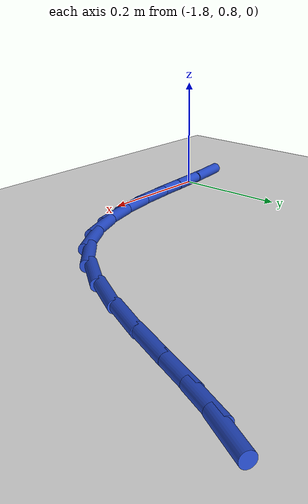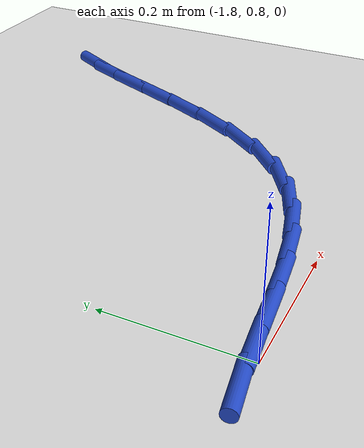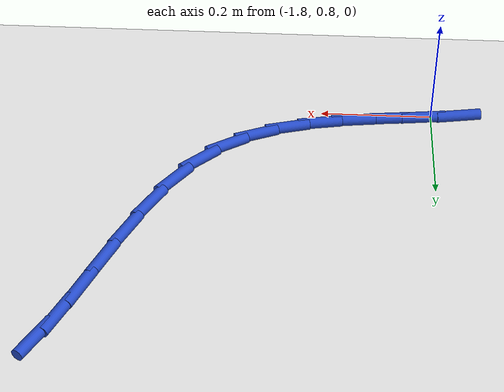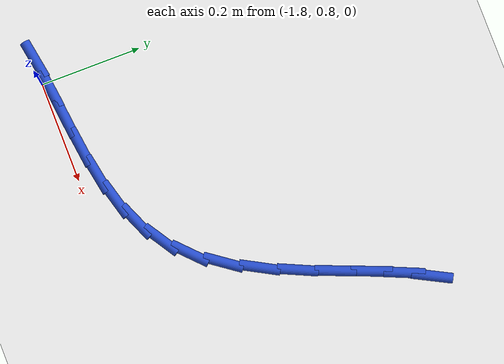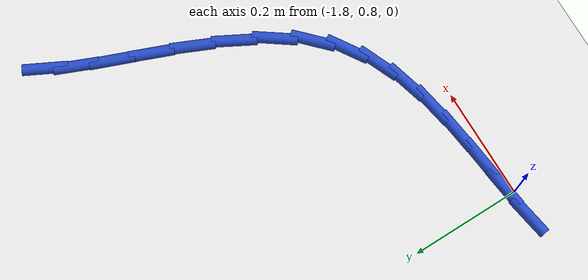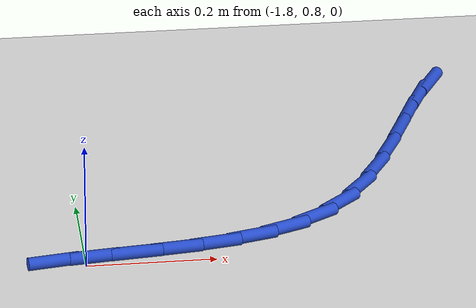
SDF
<sdf version="1.6">
 <world name="default">
  <model name="ground_plane">
   <static>1</static>
   <link name="link">
    <collision name="collision">
     <geometry><plane><normal>0 0 1</normal><size>100 100</size></plane></geometry>
     <surface><friction><ode><mu>100</mu><mu2>50</mu2></ode></friction></surface>
    </collision>
    <visual name="visual">
     <cast_shadows>0</cast_shadows>
     <geometry><plane><normal>0 0 1</normal><size>100 100</size></plane></geometry>
     <material>
      <script><uri>file://media/materials/scripts/gazebo.material</uri><name>Gazebo/WhiteGlow</name></script>
     </material>
    </visual>
   </link>
  </model>
  <model name="line">
   <link name="link_33">
    <pose>-1.1857739451590654 1.3689303962425572 0.01 0 1.57 1.0878841200329048</pose>
    <collision name="collision">
     <geometry><cylinder><radius>0.01</radius><length>0.08</length></cylinder></geometry>
    </collision>
    <visual name="visual">
     <material>
      <script><name>Gazebo/Blue</name><uri>file://media/materials/scripts/gazebo.material</uri></script>
     </material>
     <geometry><cylinder><radius>0.01</radius><length>0.08</length></cylinder></geometry>
    </visual>
   </link>
   <link name="link_34">
    <pose>-1.2107220885525243 1.3213483111555888 0.01 0 1.57 1.165089982348605</pose>
    <collision name="collision">
     <geometry><cylinder><radius>0.01</radius><length>0.08</length></cylinder></geometry>
    </collision>
    <visual name="visual">
     <material>
      <script><name>Gazebo/Blue</name><uri>file://media/materials/scripts/gazebo.material</uri></script>
     </material>
     <geometry><cylinder><radius>0.01</radius><length>0.08</length></cylinder></geometry>
    </visual>
   </link>
   <link name="link_35">
    <pose>-1.2355185939646245 1.2636197177779738 0.01 0 1.57 1.1909954119396955</pose>
    <collision name="collision">
     <geometry><cylinder><radius>0.01</radius><length>0.08</length></cylinder></geometry>
    </collision>
    <visual name="visual">
     <material>
      <script><name>Gazebo/Blue</name><uri>file://media/materials/scripts/gazebo.material</uri></script>
     </material>
     <geometry><cylinder><radius>0.01</radius><length>0.08</length></cylinder></geometry>
    </visual>
   </link>
   <link name="link_36">
    <pose>-1.2611544229923708 1.19939879648678 0.01 0 1.57 1.1820579301972287</pose>
    <collision name="collision">
     <geometry><cylinder><radius>0.01</radius><length>0.08</length></cylinder></geometry>
    </collision>
    <visual name="visual">
     <material>
      <script><name>Gazebo/Blue</name><uri>file://media/materials/scripts/gazebo.material</uri></script>
     </material>
     <geometry><cylinder><radius>0.01</radius><length>0.08</length></cylinder></geometry>
    </visual>
   </link>
   <link name="link_37">
    <pose>-1.2886205372327684 1.1323397276590752 0.01 0 1.57 1.1419579872965693</pose>
    <collision name="collision">
     <geometry><cylinder><radius>0.01</radius><length>0.08</length></cylinder></geometry>
    </collision>
    <visual name="visual">
     <material>
      <script><name>Gazebo/Blue</name><uri>file://media/materials/scripts/gazebo.material</uri></script>
     </material>
     <geometry><cylinder><radius>0.01</radius><length>0.08</length></cylinder></geometry>
    </visual>
   </link>
   <link name="link_38">
    <pose>-1.3189078982828217 1.066096691671926 0.01 0 1.57 1.0664068527729855</pose>
    <collision name="collision">
     <geometry><cylinder><radius>0.01</radius><length>0.08</length></cylinder></geometry>
    </collision>
    <visual name="visual">
     <material>
      <script><name>Gazebo/Blue</name><uri>file://media/materials/scripts/gazebo.material</uri></script>
     </material>
     <geometry><cylinder><radius>0.01</radius><length>0.08</length></cylinder></geometry>
    </visual>
   </link>
   <link name="link_39">
    <pose>-1.3530074677395365 1.0043238689024019 0.01 0 1.57 0.9433949391994723</pose>
    <collision name="collision">
     <geometry><cylinder><radius>0.01</radius><length>0.08</length></cylinder></geometry>
    </collision>
    <visual name="visual">
     <material>
      <script><name>Gazebo/Blue</name><uri>file://media/materials/scripts/gazebo.material</uri></script>
     </material>
     <geometry><cylinder><radius>0.01</radius><length>0.08</length></cylinder></geometry>
    </visual>
   </link>
   <link name="link_40">
    <pose>-1.3919102071999168 0.9506754397275701 0.01 0 1.57 0.7610564542535616</pose>
    <collision name="collision">
     <geometry><cylinder><radius>0.01</radius><length>0.08</length></cylinder></geometry>
    </collision>
    <visual name="visual">
     <material>
      <script><name>Gazebo/Blue</name><uri>file://media/materials/scripts/gazebo.material</uri></script>
     </material>
     <geometry><cylinder><radius>0.01</radius><length>0.08</length></cylinder></geometry>
    </visual>
   </link>
   <link name="link_41">
    <pose>-1.4364326332132622 0.9082694187079943 0.01 0 1.57 0.5660163241958268</pose>
    <collision name="collision">
     <geometry><cylinder><radius>0.01</radius><length>0.08</length></cylinder></geometry>
    </collision>
    <visual name="visual">
     <material>
      <script><name>Gazebo/Blue</name><uri>file://media/materials/scripts/gazebo.material</uri></script>
     </material>
     <geometry><cylinder><radius>0.01</radius><length>0.08</length></cylinder></geometry>
    </visual>
   </link>
   <link name="link_42">
    <pose>-1.4862233721955553 0.876634250077349 0.01 0 1.57 0.3981559255231439</pose>
    <collision name="collision">
     <geometry><cylinder><radius>0.01</radius><length>0.08</length></cylinder></geometry>
    </collision>
    <visual name="visual">
     <material>
      <script><name>Gazebo/Blue</name><uri>file://media/materials/scripts/gazebo.material</uri></script>
     </material>
     <geometry><cylinder><radius>0.01</radius><length>0.08</length></cylinder></geometry>
    </visual>
   </link>
   <link name="link_43">
    <pose>-1.5404515844676145 0.853824714392519 0.01 0 1.57 0.26883944561906653</pose>
    <collision name="collision">
     <geometry><cylinder><radius>0.01</radius><length>0.08</length></cylinder></geometry>
    </collision>
    <visual name="visual">
     <material>
      <script><name>Gazebo/Blue</name><uri>file://media/materials/scripts/gazebo.material</uri></script>
     </material>
     <geometry><cylinder><radius>0.01</radius><length>0.08</length></cylinder></geometry>
    </visual>
   </link>
   <link name="link_44">
    <pose>-1.5982849661959306 0.8378910920568421 0.01 0 1.57 0.17966360084660823</pose>
    <collision name="collision">
     <geometry><cylinder><radius>0.01</radius><length>0.08</length></cylinder></geometry>
    </collision>
    <visual name="visual">
     <material>
      <script><name>Gazebo/Blue</name><uri>file://media/materials/scripts/gazebo.material</uri></script>
     </material>
     <geometry><cylinder><radius>0.01</radius><length>0.08</length></cylinder></geometry>
    </visual>
   </link>
   <link name="link_45">
    <pose>-1.658891213546995 0.8268836634736556 0.01 0 1.57 0.12770039536535566</pose>
    <collision name="collision">
     <geometry><cylinder><radius>0.01</radius><length>0.08</length></cylinder></geometry>
    </collision>
    <visual name="visual">
     <material>
      <script><name>Gazebo/Blue</name><uri>file://media/materials/scripts/gazebo.material</uri></script>
     </material>
     <geometry><cylinder><radius>0.01</radius><length>0.08</length></cylinder></geometry>
    </visual>
   </link>
   <link name="link_46">
    <pose>-1.7214380226873003 0.8188527090462978 0.01 0 1.57 0.10959278203250261</pose>
    <collision name="collision">
     <geometry><cylinder><radius>0.01</radius><length>0.08</length></cylinder></geometry>
    </collision>
    <visual name="visual">
     <material>
      <script><name>Gazebo/Blue</name><uri>file://media/materials/scripts/gazebo.material</uri></script>
     </material>
     <geometry><cylinder><radius>0.01</radius><length>0.08</length></cylinder></geometry>
    </visual>
   </link>
   <link name="link_47">
    <pose>-1.7850930897833364 0.8118485091781057 0.01 0 1.57 0.12336591830272846</pose>
    <collision name="collision">
     <geometry><cylinder><radius>0.01</radius><length>0.08</length></cylinder></geometry>
    </collision>
    <visual name="visual">
     <material>
      <script><name>Gazebo/Blue</name><uri>file://media/materials/scripts/gazebo.material</uri></script>
     </material>
     <geometry><cylinder><radius>0.01</radius><length>0.08</length></cylinder></geometry>
    </visual>
   </link>
   <link name="link_48">
    <pose>-1.8490241110015955 0.8039213442724176 0.01 0 1.57 0.16753250769274522</pose>
    <collision name="collision">
     <geometry><cylinder><radius>0.01</radius><length>0.08</length></cylinder></geometry>
    </collision>
    <visual name="visual">
     <material>
      <script><name>Gazebo/Blue</name><uri>file://media/materials/scripts/gazebo.material</uri></script>
     </material>
     <geometry><cylinder><radius>0.01</radius><length>0.08</length></cylinder></geometry>
    </visual>
   </link>
  </model>
 </world>
</sdf>
